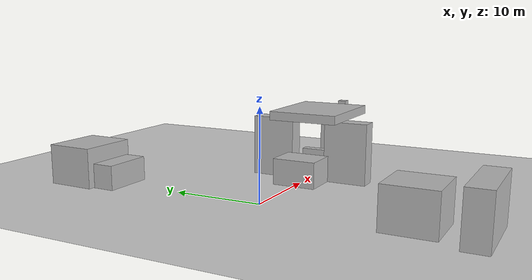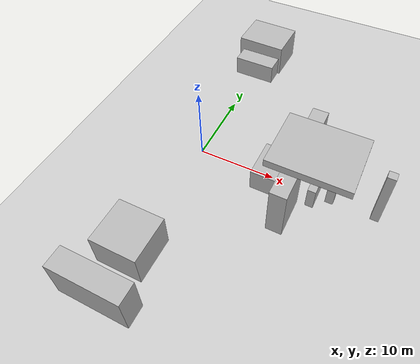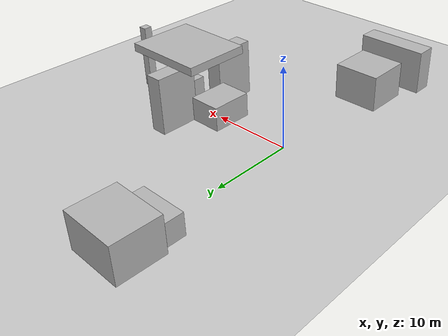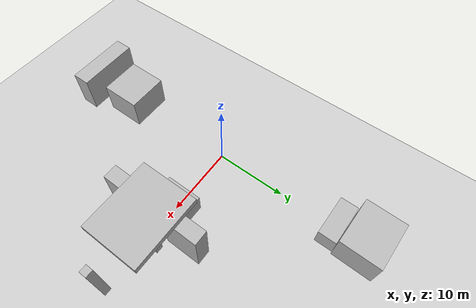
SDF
<sdf version="1.6">
 <world name="default">
  <light name="sun" type="directional">
   <pose>0 0 10 0 -0 0</pose>
   <diffuse>0.8 0.8 0.8 1</diffuse>
   <specular>0.2 0.2 0.2 1</specular>
   <attenuation>
    <range>1000</range>
    <constant>0.9</constant>
    <linear>0.01</linear>
    <quadratic>0.001</quadratic>
   </attenuation>
   <direction>-0.5 0.1 -0.9</direction>
  </light>
  <model name="ground_plane">
   <static>1</static>
   <link name="link">
    <collision name="collision">
     <geometry><plane><normal>0 0 1</normal><size>100 100</size></plane></geometry>
     <surface>
      <contact><collide_bitmask>65535</collide_bitmask></contact>
      <friction><ode><mu>100</mu><mu2>50</mu2></ode></friction>
     </surface>
    </collision>
    <visual name="visual">
     <cast_shadows>0</cast_shadows>
     <geometry><plane><normal>0 0 1</normal><size>100 100</size></plane></geometry>
     <material>
      <script><uri>file://media/materials/scripts/gazebo.material</uri><name>Gazebo/Grey</name></script>
     </material>
    </visual>
   </link>
  </model>
  <physics name="default_physics" default="0" type="ode">
   <ode>
    <solver>
     <type>quick</type>
     <iters>10</iters>
     <sor>1.3</sor>
     <use_dynamic_moi_rescaling>0</use_dynamic_moi_rescaling>
    </solver>
    <constraints>
     <cfm>0</cfm>
     <erp>0.2</erp>
     <contact_max_correcting_vel>100</contact_max_correcting_vel>
     <contact_surface_layer>0.001</contact_surface_layer>
    </constraints>
   </ode>
   <max_step_size>0.004</max_step_size>
   <real_time_factor>1</real_time_factor>
   <real_time_update_rate>250</real_time_update_rate>
  </physics>
  <model name="box0">
   <pose>9.99693 0.000637 1.50001 -7e-06 -4e-06 -0.003836</pose>
   <link name="link">
    <collision name="collision"><geometry><box><size>4 5 3</size></box></geometry></collision>
    <visual name="visual"><geometry><box><size>4 5 3</size></box></geometry></visual>
    <inertial>
     <inertia><ixx>1</ixx><ixy>0</ixy><ixz>0</ixz><iyy>1</iyy><iyz>0</iyz><izz>1</izz></inertia>
     <mass>1</mass>
    </inertial>
   </link>
  </model>
  <model name="box1">
   <pose>12.9969 4.4968 3.4968 1.8e-05 -5e-06 -0.003828</pose>
   <link name="link">
    <collision name="collision"><geometry><box><size>2 5 7</size></box></geometry></collision>
    <visual name="visual"><geometry><box><size>2 5 7</size></box></geometry></visual>
    <inertial>
     <inertia><ixx>1</ixx><ixy>0</ixy><ixz>0</ixz><iyy>1</iyy><iyz>0</iyz><izz>1</izz></inertia>
     <mass>1</mass>
    </inertial>
   </link>
  </model>
  <model name="box2">
   <pose>12.9969 -4.49496 3.4968 1.8e-05 -5e-06 -0.003828</pose>
   <link name="link">
    <collision name="collision"><geometry><box><size>2 5 7</size></box></geometry></collision>
    <visual name="visual"><geometry><box><size>2 5 7</size></box></geometry></visual>
    <inertial>
     <inertia><ixx>1</ixx><ixy>0</ixy><ixz>0</ixz><iyy>1</iyy><iyz>0</iyz><izz>1</izz></inertia>
     <mass>1</mass>
    </inertial>
   </link>
  </model>
  <model name="box3">
   <pose>15.4969 0.000637 1.50001 -7e-06 -4e-06 -0.003836</pose>
   <link name="link">
    <collision name="collision"><geometry><box><size>1 4 3</size></box></geometry></collision>
    <visual name="visual"><geometry><box><size>1 4 3</size></box></geometry></visual>
    <inertial>
     <inertia><ixx>1</ixx><ixy>0</ixy><ixz>0</ixz><iyy>1</iyy><iyz>0</iyz><izz>1</izz></inertia>
     <mass>1</mass>
    </inertial>
   </link>
  </model>
  <model name="box4">
   <pose>17.4953 -5e-06 3.4968 4e-06 -1.2e-05 -0.002101</pose>
   <link name="link">
    <collision name="collision"><geometry><box><size>1 1 7</size></box></geometry></collision>
    <visual name="visual"><geometry><box><size>1 1 7</size></box></geometry></visual>
    <inertial>
     <inertia><ixx>1</ixx><ixy>0</ixy><ixz>0</ixz><iyy>1</iyy><iyz>0</iyz><izz>1</izz></inertia>
     <mass>1</mass>
    </inertial>
   </link>
  </model>
  <model name="box5">
   <pose>22.9953 -5e-06 4.00001 4e-06 -1.2e-05 -0.002101</pose>
   <link name="link">
    <collision name="collision"><geometry><box><size>1 1 8</size></box></geometry></collision>
    <visual name="visual"><geometry><box><size>1 1 8</size></box></geometry></visual>
    <inertial>
     <inertia><ixx>1</ixx><ixy>0</ixy><ixz>0</ixz><iyy>1</iyy><iyz>0</iyz><izz>1</izz></inertia>
     <mass>1</mass>
    </inertial>
   </link>
  </model>
  <model name="box6">
   <pose>14.9953 -5e-06 7.5021 4e-06 -1.2e-05 -0.002101</pose>
   <link name="link">
    <collision name="collision"><geometry><box><size>10 8 1</size></box></geometry></collision>
    <visual name="visual"><geometry><box><size>10 8 1</size></box></geometry></visual>
    <inertial>
     <inertia><ixx>1</ixx><ixy>0</ixy><ixz>0</ixz><iyy>1</iyy><iyz>0</iyz><izz>1</izz></inertia>
     <mass>1</mass>
    </inertial>
   </link>
  </model>
  <model name="box26">
   <pose>0.039349 -22.0159 2.75 1e-05 1.9e-05 0.001647</pose>
   <link name="link">
    <collision name="collision"><geometry><box><size>8.75 2.5 5.5</size></box></geometry></collision>
    <visual name="visual"><geometry><box><size>8.75 2.5 5.5</size></box></geometry></visual>
    <inertial>
     <inertia><ixx>1</ixx><ixy>0</ixy><ixz>0</ixz><iyy>1</iyy><iyz>0</iyz><izz>1</izz></inertia>
     <mass>1</mass>
    </inertial>
   </link>
  </model>
  <model name="box65">
   <pose>0.007369 -16.0006 2.24994 0 -8e-06 0.000178</pose>
   <link name="link">
    <collision name="collision"><geometry><box><size>5.75 5.5 4.5</size></box></geometry></collision>
    <visual name="visual"><geometry><box><size>5.75 5.5 4.5</size></box></geometry></visual>
    <inertial>
     <inertia><ixx>1</ixx><ixy>0</ixy><ixz>0</ixz><iyy>1</iyy><iyz>0</iyz><izz>1</izz></inertia>
     <mass>1</mass>
    </inertial>
   </link>
  </model>
  <model name="box66">
   <pose>-0.01647 17.9947 1.37496 2e-05 -3e-06 -0.006852</pose>
   <link name="link">
    <collision name="collision"><geometry><box><size>5.75 2.5 2.75</size></box></geometry></collision>
    <visual name="visual"><geometry><box><size>5.75 2.5 2.75</size></box></geometry></visual>
    <inertial>
     <inertia><ixx>1</ixx><ixy>0</ixy><ixz>0</ixz><iyy>1</iyy><iyz>0</iyz><izz>1</izz></inertia>
     <mass>1</mass>
    </inertial>
   </link>
  </model>
  <model name="box67">
   <pose>-0.131717 22.1016 2.24991 -6e-06 -2.2e-05 -0.021778</pose>
   <link name="link">
    <collision name="collision"><geometry><box><size>6.75 5.5 4.5</size></box></geometry></collision>
    <visual name="visual"><geometry><box><size>6.75 5.5 4.5</size></box></geometry></visual>
    <inertial>
     <inertia><ixx>1</ixx><ixy>0</ixy><ixz>0</ixz><iyy>1</iyy><iyz>0</iyz><izz>1</izz></inertia>
     <mass>1</mass>
    </inertial>
   </link>
  </model>
  <gravity>0 0 -9.8066</gravity>
  <magnetic_field>6e-06 2.3e-05 -4.2e-05</magnetic_field>
  <atmosphere type="adiabatic"/>
  <scene><ambient>0.4 0.4 0.4 1</ambient><background>0.7 0.7 0.7 1</background><shadows>1</shadows></scene>
  <audio><device>default</device></audio>
  <spherical_coordinates>
   <surface_model>EARTH_WGS84</surface_model>
   <latitude_deg>0</latitude_deg>
   <longitude_deg>0</longitude_deg>
   <elevation>0</elevation>
   <heading_deg>0</heading_deg>
  </spherical_coordinates>
 </world>
</sdf>
